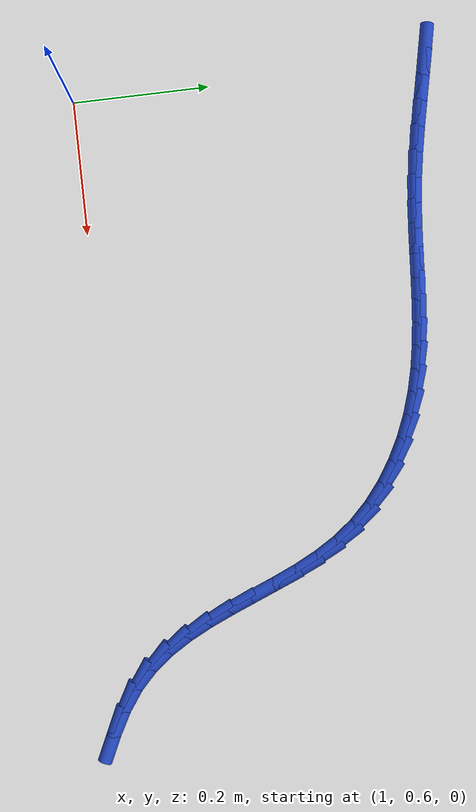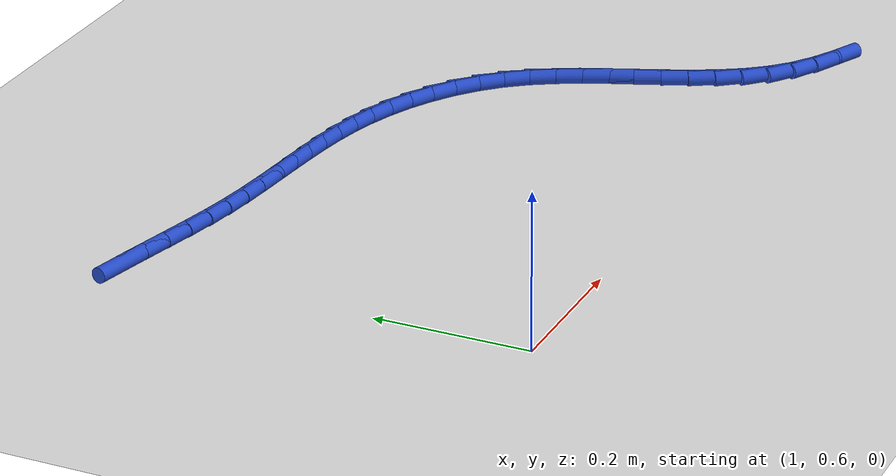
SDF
<sdf version="1.6">
 <world name="default">
  <model name="ground_plane">
   <static>1</static>
   <link name="link">
    <collision name="collision">
     <geometry><plane><normal>0 0 1</normal><size>100 100</size></plane></geometry>
     <surface><friction><ode><mu>100</mu><mu2>50</mu2></ode></friction></surface>
    </collision>
    <visual name="visual">
     <cast_shadows>0</cast_shadows>
     <geometry><plane><normal>0 0 1</normal><size>100 100</size></plane></geometry>
     <material>
      <script><uri>file://media/materials/scripts/gazebo.material</uri><name>Gazebo/WhiteGlow</name></script>
     </material>
    </visual>
   </link>
  </model>
  <model name="line">
   <link name="link_50">
    <pose>0.987167309505188 1.1227442791331326 0.01 0 1.57 -0.21571891843026414</pose>
    <collision name="collision">
     <geometry><cylinder><radius>0.01</radius><length>0.08</length></cylinder></geometry>
    </collision>
    <visual name="visual">
     <material>
      <script><name>Gazebo/Blue</name><uri>file://media/materials/scripts/gazebo.material</uri></script>
     </material>
     <geometry><cylinder><radius>0.01</radius><length>0.08</length></cylinder></geometry>
    </visual>
   </link>
   <link name="link_51">
    <pose>1.024615188621233 1.1145383802982438 0.01 0 1.57 -0.22400793966190222</pose>
    <collision name="collision">
     <geometry><cylinder><radius>0.01</radius><length>0.08</length></cylinder></geometry>
    </collision>
    <visual name="visual">
     <material>
      <script><name>Gazebo/Blue</name><uri>file://media/materials/scripts/gazebo.material</uri></script>
     </material>
     <geometry><cylinder><radius>0.01</radius><length>0.08</length></cylinder></geometry>
    </visual>
   </link>
   <link name="link_52">
    <pose>1.0622957713150498 1.105953553664149 0.01 0 1.57 -0.22052632753357507</pose>
    <collision name="collision">
     <geometry><cylinder><radius>0.01</radius><length>0.08</length></cylinder></geometry>
    </collision>
    <visual name="visual">
     <material>
      <script><name>Gazebo/Blue</name><uri>file://media/materials/scripts/gazebo.material</uri></script>
     </material>
     <geometry><cylinder><radius>0.01</radius><length>0.08</length></cylinder></geometry>
    </visual>
   </link>
   <link name="link_53">
    <pose>1.0999900332038257 1.0975035505556825 0.01 0 1.57 -0.20517136011554662</pose>
    <collision name="collision">
     <geometry><cylinder><radius>0.01</radius><length>0.08</length></cylinder></geometry>
    </collision>
    <visual name="visual">
     <material>
      <script><name>Gazebo/Blue</name><uri>file://media/materials/scripts/gazebo.material</uri></script>
     </material>
     <geometry><cylinder><radius>0.01</radius><length>0.08</length></cylinder></geometry>
    </visual>
   </link>
   <link name="link_54">
    <pose>1.137478949904747 1.0897021222976788 0.01 0 1.57 -0.17724304943913022</pose>
    <collision name="collision">
     <geometry><cylinder><radius>0.01</radius><length>0.08</length></cylinder></geometry>
    </collision>
    <visual name="visual">
     <material>
      <script><name>Gazebo/Blue</name><uri>file://media/materials/scripts/gazebo.material</uri></script>
     </material>
     <geometry><cylinder><radius>0.01</radius><length>0.08</length></cylinder></geometry>
    </visual>
   </link>
   <link name="link_55">
    <pose>1.174543497035 1.0830630202149722 0.01 0 1.57 -0.1396578547185494</pose>
    <collision name="collision">
     <geometry><cylinder><radius>0.01</radius><length>0.08</length></cylinder></geometry>
    </collision>
    <visual name="visual">
     <material>
      <script><name>Gazebo/Blue</name><uri>file://media/materials/scripts/gazebo.material</uri></script>
     </material>
     <geometry><cylinder><radius>0.01</radius><length>0.08</length></cylinder></geometry>
    </visual>
   </link>
   <link name="link_56">
    <pose>1.2110076473723592 1.0779371462353102 0.01 0 1.57 -0.10868754454958968</pose>
    <collision name="collision">
     <geometry><cylinder><radius>0.01</radius><length>0.08</length></cylinder></geometry>
    </collision>
    <visual name="visual">
     <material>
      <script><name>Gazebo/Blue</name><uri>file://media/materials/scripts/gazebo.material</uri></script>
     </material>
     <geometry><cylinder><radius>0.01</radius><length>0.08</length></cylinder></geometry>
    </visual>
   </link>
   <link name="link_57">
    <pose>1.2468673032739161 1.074024228396105 0.01 0 1.57 -0.0893789697139297</pose>
    <collision name="collision">
     <geometry><cylinder><radius>0.01</radius><length>0.08</length></cylinder></geometry>
    </collision>
    <visual name="visual">
     <material>
      <script><name>Gazebo/Blue</name><uri>file://media/materials/scripts/gazebo.material</uri></script>
     </material>
     <geometry><cylinder><radius>0.01</radius><length>0.08</length></cylinder></geometry>
    </visual>
   </link>
   <link name="link_58">
    <pose>1.282161334730905 1.0708612571674843 0.01 0 1.57 -0.0825345256419253</pose>
    <collision name="collision">
     <geometry><cylinder><radius>0.01</radius><length>0.08</length></cylinder></geometry>
    </collision>
    <visual name="visual">
     <material>
      <script><name>Gazebo/Blue</name><uri>file://media/materials/scripts/gazebo.material</uri></script>
     </material>
     <geometry><cylinder><radius>0.01</radius><length>0.08</length></cylinder></geometry>
    </visual>
   </link>
   <link name="link_59">
    <pose>1.3169286117345602 1.067985223019575 0.01 0 1.57 -0.08880202893705323</pose>
    <collision name="collision">
     <geometry><cylinder><radius>0.01</radius><length>0.08</length></cylinder></geometry>
    </collision>
    <visual name="visual">
     <material>
      <script><name>Gazebo/Blue</name><uri>file://media/materials/scripts/gazebo.material</uri></script>
     </material>
     <geometry><cylinder><radius>0.01</radius><length>0.08</length></cylinder></geometry>
    </visual>
   </link>
   <link name="link_60">
    <pose>1.351208004276115 1.064933116422505 0.01 0 1.57 -0.10867879760519396</pose>
    <collision name="collision">
     <geometry><cylinder><radius>0.01</radius><length>0.08</length></cylinder></geometry>
    </collision>
    <visual name="visual">
     <material>
      <script><name>Gazebo/Blue</name><uri>file://media/materials/scripts/gazebo.material</uri></script>
     </material>
     <geometry><cylinder><radius>0.01</radius><length>0.08</length></cylinder></geometry>
    </visual>
   </link>
   <link name="link_61">
    <pose>1.3850383823468033 1.0612419278464016 0.01 0 1.57 -0.14245301429784252</pose>
    <collision name="collision">
     <geometry><cylinder><radius>0.01</radius><length>0.08</length></cylinder></geometry>
    </collision>
    <visual name="visual">
     <material>
      <script><name>Gazebo/Blue</name><uri>file://media/materials/scripts/gazebo.material</uri></script>
     </material>
     <geometry><cylinder><radius>0.01</radius><length>0.08</length></cylinder></geometry>
    </visual>
   </link>
   <link name="link_62">
    <pose>1.4184586159378587 1.056448647761392 0.01 0 1.57 -0.19007033997776585</pose>
    <collision name="collision">
     <geometry><cylinder><radius>0.01</radius><length>0.08</length></cylinder></geometry>
    </collision>
    <visual name="visual">
     <material>
      <script><name>Gazebo/Blue</name><uri>file://media/materials/scripts/gazebo.material</uri></script>
     </material>
     <geometry><cylinder><radius>0.01</radius><length>0.08</length></cylinder></geometry>
    </visual>
   </link>
   <link name="link_63">
    <pose>1.4515075750405153 1.0500902666376033 0.01 0 1.57 -0.25093475802618304</pose>
    <collision name="collision">
     <geometry><cylinder><radius>0.01</radius><length>0.08</length></cylinder></geometry>
    </collision>
    <visual name="visual">
     <material>
      <script><name>Gazebo/Blue</name><uri>file://media/materials/scripts/gazebo.material</uri></script>
     </material>
     <geometry><cylinder><radius>0.01</radius><length>0.08</length></cylinder></geometry>
    </visual>
   </link>
   <link name="link_64">
    <pose>1.4842241296460057 1.0417037749451634 0.01 0 1.57 -0.32368742261113354</pose>
    <collision name="collision">
     <geometry><cylinder><radius>0.01</radius><length>0.08</length></cylinder></geometry>
    </collision>
    <visual name="visual">
     <material>
      <script><name>Gazebo/Blue</name><uri>file://media/materials/scripts/gazebo.material</uri></script>
     </material>
     <geometry><cylinder><radius>0.01</radius><length>0.08</length></cylinder></geometry>
    </visual>
   </link>
   <link name="link_65">
    <pose>1.516646865301825 1.0308263750430855 0.01 0 1.57 -0.4047346980435109</pose>
    <collision name="collision">
     <geometry><cylinder><radius>0.01</radius><length>0.08</length></cylinder></geometry>
    </collision>
    <visual name="visual">
     <material>
      <script><name>Gazebo/Blue</name><uri>file://media/materials/scripts/gazebo.material</uri></script>
     </material>
     <geometry><cylinder><radius>0.01</radius><length>0.08</length></cylinder></geometry>
    </visual>
   </link>
   <link name="link_66">
    <pose>1.5486532046436847 1.017115323364046 0.01 0 1.57 -0.49030531913043446</pose>
    <collision name="collision">
     <geometry><cylinder><radius>0.01</radius><length>0.08</length></cylinder></geometry>
    </collision>
    <visual name="visual">
     <material>
      <script><name>Gazebo/Blue</name><uri>file://media/materials/scripts/gazebo.material</uri></script>
     </material>
     <geometry><cylinder><radius>0.01</radius><length>0.08</length></cylinder></geometry>
    </visual>
   </link>
   <link name="link_67">
    <pose>1.5796906055363609 1.000548167291743 0.01 0 1.57 -0.5824067748936377</pose>
    <collision name="collision">
     <geometry><cylinder><radius>0.01</radius><length>0.08</length></cylinder></geometry>
    </collision>
    <visual name="visual">
     <material>
      <script><name>Gazebo/Blue</name><uri>file://media/materials/scripts/gazebo.material</uri></script>
     </material>
     <geometry><cylinder><radius>0.01</radius><length>0.08</length></cylinder></geometry>
    </visual>
   </link>
   <link name="link_68">
    <pose>1.6091355976981119 0.9811552902677027 0.01 0 1.57 -0.683743074604117</pose>
    <collision name="collision">
     <geometry><cylinder><radius>0.01</radius><length>0.08</length></cylinder></geometry>
    </collision>
    <visual name="visual">
     <material>
      <script><name>Gazebo/Blue</name><uri>file://media/materials/scripts/gazebo.material</uri></script>
     </material>
     <geometry><cylinder><radius>0.01</radius><length>0.08</length></cylinder></geometry>
    </visual>
   </link>
   <link name="link_69">
    <pose>1.6363647108471966 0.9589670757334521 0.01 0 1.57 -0.796815812038557</pose>
    <collision name="collision">
     <geometry><cylinder><radius>0.01</radius><length>0.08</length></cylinder></geometry>
    </collision>
    <visual name="visual">
     <material>
      <script><name>Gazebo/Blue</name><uri>file://media/materials/scripts/gazebo.material</uri></script>
     </material>
     <geometry><cylinder><radius>0.01</radius><length>0.08</length></cylinder></geometry>
    </visual>
   </link>
   <link name="link_70">
    <pose>1.6607544747018737 0.9340139071305178 0.01 0 1.57 -0.9211903502369259</pose>
    <collision name="collision">
     <geometry><cylinder><radius>0.01</radius><length>0.08</length></cylinder></geometry>
    </collision>
    <visual name="visual">
     <material>
      <script><name>Gazebo/Blue</name><uri>file://media/materials/scripts/gazebo.material</uri></script>
     </material>
     <geometry><cylinder><radius>0.01</radius><length>0.08</length></cylinder></geometry>
    </visual>
   </link>
   <link name="link_71">
    <pose>1.6817608966522364 0.9063586988672996 0.01 0 1.57 -1.0322543602254497</pose>
    <collision name="collision">
     <geometry><cylinder><radius>0.01</radius><length>0.08</length></cylinder></geometry>
    </collision>
    <visual name="visual">
     <material>
      <script><name>Gazebo/Blue</name><uri>file://media/materials/scripts/gazebo.material</uri></script>
     </material>
     <geometry><cylinder><radius>0.01</radius><length>0.08</length></cylinder></geometry>
    </visual>
   </link>
   <link name="link_72">
    <pose>1.699659759481273 0.8763999072161348 0.01 0 1.57 -1.1143154193682245</pose>
    <collision name="collision">
     <geometry><cylinder><radius>0.01</radius><length>0.08</length></cylinder></geometry>
    </collision>
    <visual name="visual">
     <material>
      <script><name>Gazebo/Blue</name><uri>file://media/materials/scripts/gazebo.material</uri></script>
     </material>
     <geometry><cylinder><radius>0.01</radius><length>0.08</length></cylinder></geometry>
    </visual>
   </link>
   <link name="link_73">
    <pose>1.7152101413553793 0.844733805845673 0.01 0 1.57 -1.1679436784415882</pose>
    <collision name="collision">
     <geometry><cylinder><radius>0.01</radius><length>0.08</length></cylinder></geometry>
    </collision>
    <visual name="visual">
     <material>
      <script><name>Gazebo/Blue</name><uri>file://media/materials/scripts/gazebo.material</uri></script>
     </material>
     <geometry><cylinder><radius>0.01</radius><length>0.08</length></cylinder></geometry>
    </visual>
   </link>
   <link name="link_74">
    <pose>1.7291773542539732 0.8119592199835137 0.01 0 1.57 -1.1945536795879739</pose>
    <collision name="collision">
     <geometry><cylinder><radius>0.01</radius><length>0.08</length></cylinder></geometry>
    </collision>
    <visual name="visual">
     <material>
      <script><name>Gazebo/Blue</name><uri>file://media/materials/scripts/gazebo.material</uri></script>
     </material>
     <geometry><cylinder><radius>0.01</radius><length>0.08</length></cylinder></geometry>
    </visual>
   </link>
   <link name="link_75">
    <pose>1.7423267101564708 0.7786749748572555 0.01 0 1.57 -1.1950050551292328</pose>
    <collision name="collision">
     <geometry><cylinder><radius>0.01</radius><length>0.08</length></cylinder></geometry>
    </collision>
    <visual name="visual">
     <material>
      <script><name>Gazebo/Blue</name><uri>file://media/materials/scripts/gazebo.material</uri></script>
     </material>
     <geometry><cylinder><radius>0.01</radius><length>0.08</length></cylinder></geometry>
    </visual>
   </link>
   <link name="link_76">
    <pose>1.755423521042291 0.7454798956944976 0.01 0 1.57 -1.1690803206623008</pose>
    <collision name="collision">
     <geometry><cylinder><radius>0.01</radius><length>0.08</length></cylinder></geometry>
    </collision>
    <visual name="visual">
     <material>
      <script><name>Gazebo/Blue</name><uri>file://media/materials/scripts/gazebo.material</uri></script>
     </material>
     <geometry><cylinder><radius>0.01</radius><length>0.08</length></cylinder></geometry>
    </visual>
   </link>
   <link name="link_77">
    <pose>1.769233098890849 0.7129728077228384 0.01 0 1.57 -1.1154461332901577</pose>
    <collision name="collision">
     <geometry><cylinder><radius>0.01</radius><length>0.08</length></cylinder></geometry>
    </collision>
    <visual name="visual">
     <material>
      <script><name>Gazebo/Blue</name><uri>file://media/materials/scripts/gazebo.material</uri></script>
     </material>
     <geometry><cylinder><radius>0.01</radius><length>0.08</length></cylinder></geometry>
    </visual>
   </link>
   <link name="link_78">
    <pose>1.784520755681562 0.6817525361698775 0.01 0 1.57 -1.032126499276823</pose>
    <collision name="collision">
     <geometry><cylinder><radius>0.01</radius><length>0.08</length></cylinder></geometry>
    </collision>
    <visual name="visual">
     <material>
      <script><name>Gazebo/Blue</name><uri>file://media/materials/scripts/gazebo.material</uri></script>
     </material>
     <geometry><cylinder><radius>0.01</radius><length>0.08</length></cylinder></geometry>
    </visual>
   </link>
   <link name="link_79">
    <pose>1.8020518033938484 0.6524179062632135 0.01 0 1.57 -0.9177787956168455</pose>
    <collision name="collision">
     <geometry><cylinder><radius>0.01</radius><length>0.08</length></cylinder></geometry>
    </collision>
    <visual name="visual">
     <material>
      <script><name>Gazebo/Blue</name><uri>file://media/materials/scripts/gazebo.material</uri></script>
     </material>
     <geometry><cylinder><radius>0.01</radius><length>0.08</length></cylinder></geometry>
    </visual>
   </link>
   <link name="link_80">
    <pose>1.8225915540071245 0.6255677432304454 0.01 0 1.57 -0.7740241255480587</pose>
    <collision name="collision">
     <geometry><cylinder><radius>0.01</radius><length>0.08</length></cylinder></geometry>
    </collision>
    <visual name="visual">
     <material>
      <script><name>Gazebo/Blue</name><uri>file://media/materials/scripts/gazebo.material</uri></script>
     </material>
     <geometry><cylinder><radius>0.01</radius><length>0.08</length></cylinder></geometry>
    </visual>
   </link>
   <link name="link_81">
    <pose>1.8469053195008074 0.6018008722991723 0.01 0 1.57 -0.6184687863620119</pose>
    <collision name="collision">
     <geometry><cylinder><radius>0.01</radius><length>0.08</length></cylinder></geometry>
    </collision>
    <visual name="visual">
     <material>
      <script><name>Gazebo/Blue</name><uri>file://media/materials/scripts/gazebo.material</uri></script>
     </material>
     <geometry><cylinder><radius>0.01</radius><length>0.08</length></cylinder></geometry>
    </visual>
   </link>
   <link name="link_82">
    <pose>1.875442038616016 0.5814941456088819 0.01 0 1.57 -0.5044804403135662</pose>
    <collision name="collision">
     <geometry><cylinder><radius>0.01</radius><length>0.08</length></cylinder></geometry>
    </collision>
    <visual name="visual">
     <material>
      <script><name>Gazebo/Blue</name><uri>file://media/materials/scripts/gazebo.material</uri></script>
     </material>
     <geometry><cylinder><radius>0.01</radius><length>0.08</length></cylinder></geometry>
    </visual>
   </link>
   <link name="link_83">
    <pose>1.9071624078566527 0.5639802380891638 0.01 0 1.57 -0.43897477773202975</pose>
    <collision name="collision">
     <geometry><cylinder><radius>0.01</radius><length>0.08</length></cylinder></geometry>
    </collision>
    <visual name="visual">
     <material>
      <script><name>Gazebo/Blue</name><uri>file://media/materials/scripts/gazebo.material</uri></script>
     </material>
     <geometry><cylinder><radius>0.01</radius><length>0.08</length></cylinder></geometry>
    </visual>
   </link>
  </model>
 </world>
</sdf>
